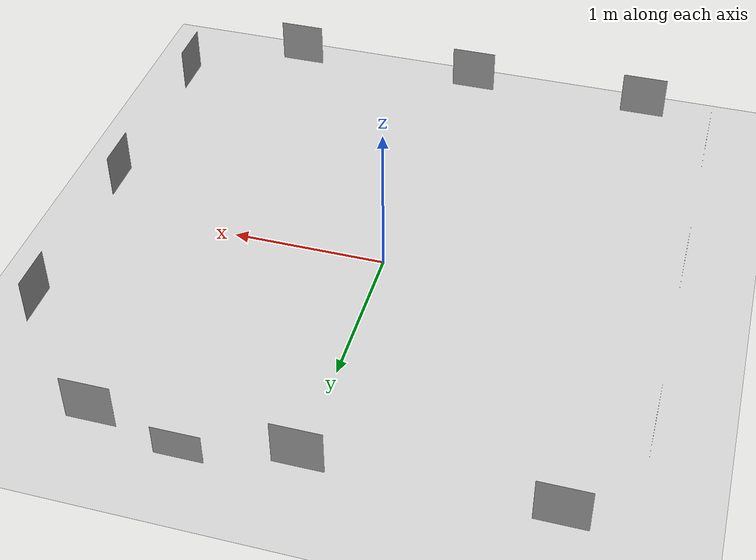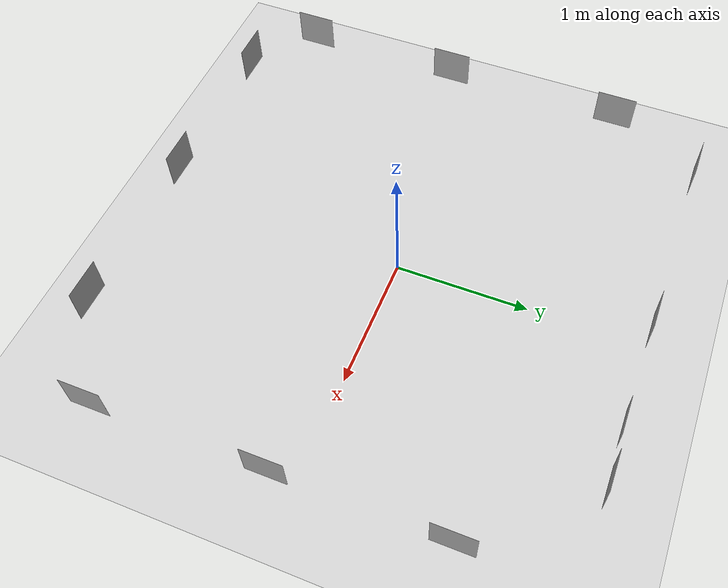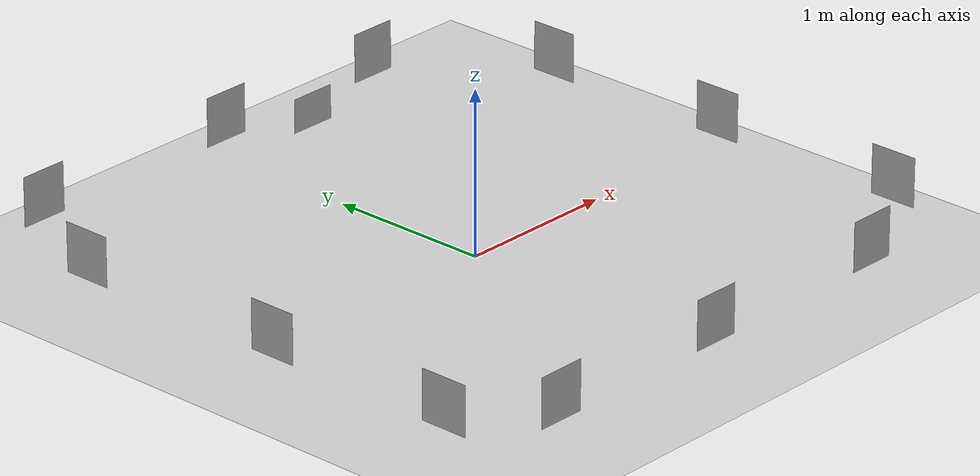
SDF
<sdf version="1.6">
 <world name="default">
  <physics name="default_physics" default="0" type="ode">
   <max_step_size>0.002</max_step_size>
   <real_time_factor>1</real_time_factor>
   <real_time_update_rate>500</real_time_update_rate>
   <ode><solver><type>quick</type></solver></ode>
  </physics>
  <scene><ambient>0.4 0.4 0.4 1</ambient><background>0.7 0.7 0.7 1</background><shadows>0</shadows></scene>
  <include><uri>model://ground_plane</uri></include>
  <include><uri>model://sun</uri></include>
  <model name="aruco">
   <static>true</static>
   <link name="aruco_link">
    <visual name="tag000">
     <pose>1.849 -0.15 0.3 0.0 0 0</pose>
     <geometry><box><size>0.00011 0.3 0.3</size></box></geometry>
     <material>
      <script><uri>file://media/materials/scripts/tag.material</uri><name>tag000</name></script>
     </material>
    </visual>
    <visual name="tag001">
     <pose>1.849 1.08 0.3 0.0 0 0</pose>
     <geometry><box><size>0.00011 0.3 0.3</size></box></geometry>
     <material>
      <script><uri>file://media/materials/scripts/tag.material</uri><name>tag001</name></script>
     </material>
    </visual>
    <visual name="tag002">
     <pose>1.15 1.849 0.3 0.0 0 1.5708</pose>
     <geometry><box><size>0.00011 0.3 0.3</size></box></geometry>
     <material>
      <script><uri>file://media/materials/scripts/tag.material</uri><name>tag002</name></script>
     </material>
    </visual>
    <visual name="tag003">
     <pose>-0.05 1.849 0.3 0.0 0 1.5708</pose>
     <geometry><box><size>0.00011 0.3 0.3</size></box></geometry>
     <material>
      <script><uri>file://media/materials/scripts/tag.material</uri><name>tag003</name></script>
     </material>
    </visual>
    <visual name="tag004">
     <pose>-1.47 1.849 0.3 0.0 0 1.5708</pose>
     <geometry><box><size>0.00011 0.3 0.3</size></box></geometry>
     <material>
      <script><uri>file://media/materials/scripts/tag.material</uri><name>tag004</name></script>
     </material>
    </visual>
    <visual name="tag005">
     <pose>-1.849 1.13 0.3 0.0 0 0</pose>
     <geometry><box><size>0.00011 0.3 0.3</size></box></geometry>
     <material>
      <script><uri>file://media/materials/scripts/tag.material</uri><name>tag005</name></script>
     </material>
    </visual>
    <visual name="tag006">
     <pose>-1.849 -0.25 0.3 0.0 0 0</pose>
     <geometry><box><size>0.00011 0.3 0.3</size></box></geometry>
     <material>
      <script><uri>file://media/materials/scripts/tag.material</uri><name>tag006</name></script>
     </material>
    </visual>
    <visual name="tag007">
     <pose>-1.849 -1.47 0.3 0.0 0 0</pose>
     <geometry><box><size>0.00011 0.3 0.3</size></box></geometry>
     <material>
      <script><uri>file://media/materials/scripts/tag.material</uri><name>tag007</name></script>
     </material>
    </visual>
    <visual name="tag008">
     <pose>-1.37 -1.849 0.3 0.0 0 -1.5708</pose>
     <geometry><box><size>0.00011 0.3 0.3</size></box></geometry>
     <material>
      <script><uri>file://media/materials/scripts/tag.material</uri><name>tag008</name></script>
     </material>
    </visual>
    <visual name="tag009">
     <pose>-0.15 -1.849 0.3 0.0 0 -1.5708</pose>
     <geometry><box><size>0.00011 0.3 0.3</size></box></geometry>
     <material>
      <script><uri>file://media/materials/scripts/tag.material</uri><name>tag009</name></script>
     </material>
    </visual>
    <visual name="tag010">
     <pose>1.14 -1.849 0.3 0.0 0 -1.5708</pose>
     <geometry><box><size>0.00011 0.3 0.3</size></box></geometry>
     <material>
      <script><uri>file://media/materials/scripts/tag.material</uri><name>tag010</name></script>
     </material>
    </visual>
    <visual name="tag011">
     <pose>1.849 -1.42 0.3 0.0 0 0</pose>
     <geometry><box><size>0.00011 0.3 0.3</size></box></geometry>
     <material>
      <script><uri>file://media/materials/scripts/tag.material</uri><name>tag011</name></script>
     </material>
    </visual>
    <visual name="calibration">
     <pose>0.65 1.849 0.105 1.5708 0 1.5708</pose>
     <geometry><box><size>0.00011 0.210 0.297</size></box></geometry>
     <material>
      <script><uri>file://media/materials/scripts/tag.material</uri><name>calibration</name></script>
     </material>
    </visual>
   </link>
  </model>
 </world>
</sdf>
